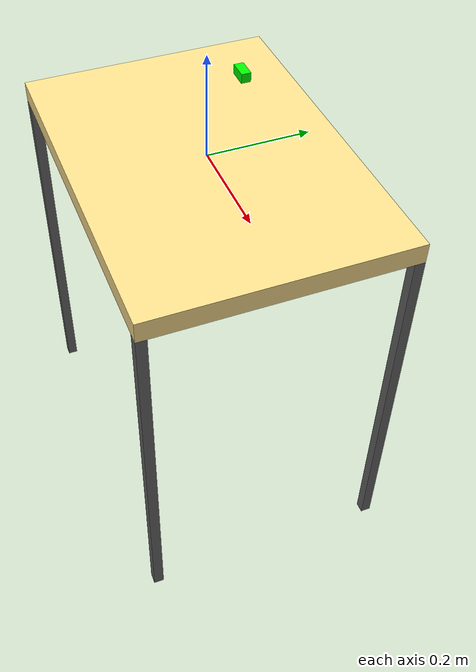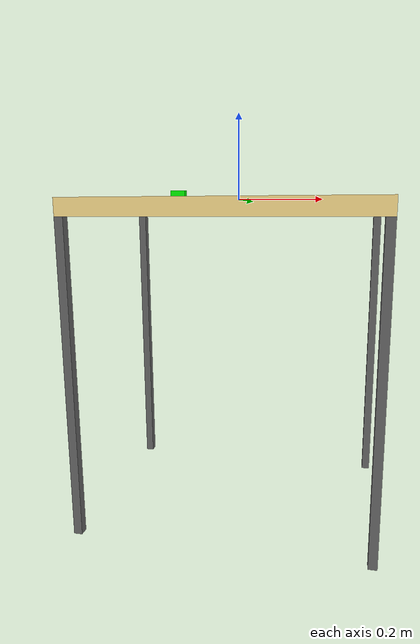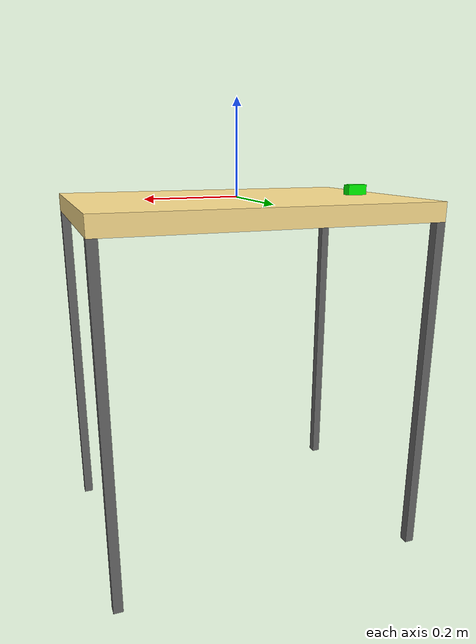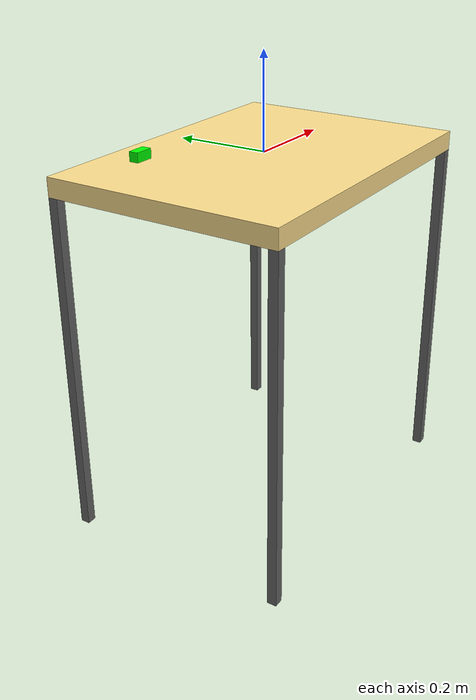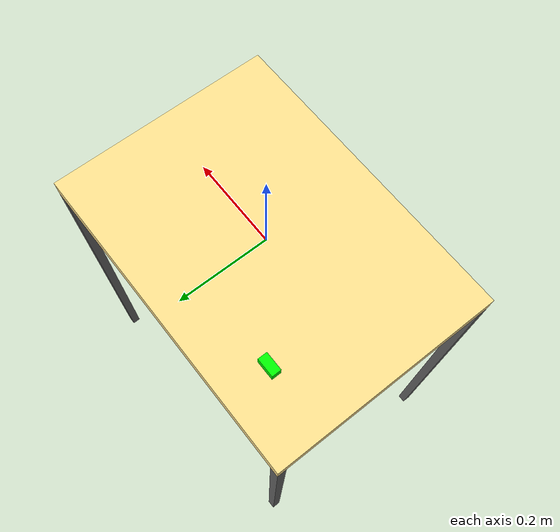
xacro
<?xml version="1.0"?>
<robot name="table_block" xmlns:xacro="http://www.ros.org/wiki/xacro">

<!-- Import all Gazebo-customization elements, including Gazebo colors -->
<xacro:include filename="$(find table_description)/urdf/table.xacro"/>
<xacro:property name="M_PI"  value="3.1415"/>

<joint name="block_joint" type="fixed">
	<origin xyz="-0.2 0.15 ${table_w * 0.5}" rpy="0 0 ${M_PI/2}" />
	<parent link="table_link" />
	<child link="block_link" />
</joint>

<link name="block_link">
   	<origin xyz="0 0 0" rpy="0 0 0"/>
	<visual>
        	<origin xyz="0 0 0" rpy="0 0 0"/>
             		<geometry>
				<box size="0.02 0.04 0.02"/>
             		</geometry>
 			<material name="green">
          			<color rgba="0 1.0 0.0 1.0"/>
      			 </material>
                </visual>
     	</link>

</robot>

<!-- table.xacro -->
<robot name="table" xmlns:xacro="http://www.ros.org/wiki/xacro">

<!-- Import all Gazebo-customization elements, including Gazebo colors -->
<xacro:include filename="$(find table_description)/urdf/table.gazebo" />

<!-- Import Rviz colors -->
<xacro:include filename="$(find table_description)/urdf/materials.xacro" />

<xacro:property name="table_l"  value="0.7"    />
<xacro:property name="table_h"  value="0.5"   />
<xacro:property name="table_w"  value="0.04"   />

<xacro:property name="leg_l"  value="0.02"    />
<xacro:property name="leg_h"  value="0.02"   />
<xacro:property name="leg_w"  value="0.74"   />

<xacro:macro name="box_I" params="m w h d">
    <inertia ixx="${1/12 * m * (d*d  + h * h)}" ixy="0.0" ixz="0.0" iyy="${1/12 * m * (h * h + w * w)}" iyz="0.0" izz="${1/12 * m * (w * w + d * d)}" />
</xacro:macro>

<xacro:macro name="leg" params="prefix rx ry zshift">
	<link name="${prefix}_leg">
      		<visual>
		<origin xyz="0 0 ${zshift}" rpy="0 0 0"/>
        		<geometry>
	        		<box size="${leg_l} ${leg_h} ${leg_w}"/>
        		</geometry>
 			<material name="Grey">
 				<color rgba="0.4 0.4 0.4 1"/>
        		</material>
      		</visual>

		<inertial>
			<origin xyz="0 0 0" rpy="0 0 0"/>
			<mass value="1"/>
			<xacro:box_I m="0.25" w="${leg_l}" h="${leg_h}" d="${leg_w}"/>
		</inertial>

		<collision>
			<origin xyz="0 0 0" rpy="0 0 0"/>
			<geometry>
				<box size="${leg_l} ${leg_h} ${leg_w}"/>
			</geometry>
  		</collision>
	</link>
	<joint name="link_${prefix}_leg" type="fixed">
		<origin xyz="${rx * table_l * 0.5 - rx * leg_l * 0.5 } ${ry * table_h * 0.5 - ry * leg_h * 0.5} ${-0.5 * table_w - 0.5 * leg_w}" rpy="0 0 0"/>
		<parent link="table_link"/>
		<child link="${prefix}_leg"/>
	 </joint>
</xacro:macro>

<xacro:macro name="table">

<link name="table_link">
	<visual>
		<origin xyz="0 0 ${-table_w * 0.5}" rpy="0 0 0"/>
		<geometry>
			<box size="${table_l} ${table_h} ${table_w}"/>
		</geometry>
 		<material name="Wood">
 			<color rgba="1 0.88 0.56 1"/>
        	</material>
        </visual>

	<inertial>
		<origin xyz="0 0 0" rpy="0 0 0"/>
		<mass value="1"/>
		<xacro:box_I m="1.0" w="${table_w}" h="${table_h}" d="${table_l}"/>
	</inertial>

	<collision>
		<origin xyz="0 0 0" rpy="0 0 0"/>
		<geometry>
			<box size="${table_l} ${table_h} ${table_w}"/>
		</geometry>
  	</collision>

</link>

<xacro:leg prefix="front_left"  rx="1"  ry="1"  zshift="${-table_w * 0.5}" />
<xacro:leg prefix="front_right" rx="1"  ry="-1" zshift="${-table_w * 0.5}" />
<xacro:leg prefix="rear_left"   rx="-1" ry="1"  zshift="${-table_w * 0.5}" />
<xacro:leg prefix="rear_right"  rx="-1" ry="-1" zshift="${-table_w * 0.5}" />

</xacro:macro>

<xacro:table/>

</robot>

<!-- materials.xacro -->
<robot>

<material name="red">
   <color rgba="0.8 0.0 0.0 1.0"/>
</material>

<material name="Grey">
   <color rgba="0.6 0.6 0.6 1.0"/>
</material>

<material name="Black">
 	<color rgba="0.0 0.0 0.0 1"/>
</material>

<material name="Blue">
 	<color rgba="0.0 0.0 1.0 1"/>
</material>

 		<material name="Wood">
 			<color rgba="1 0.88 0.56 1"/>
        	</material>

</robot>
